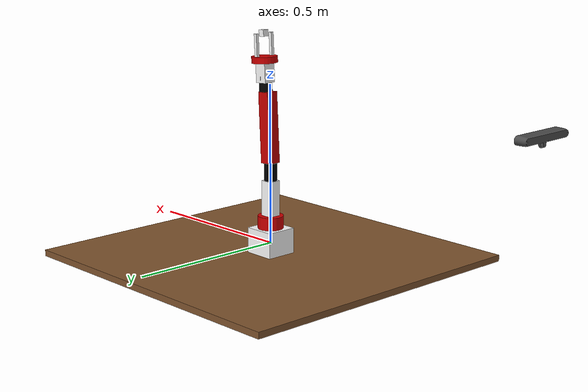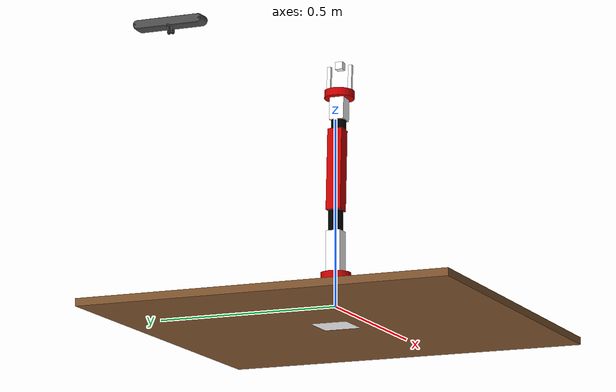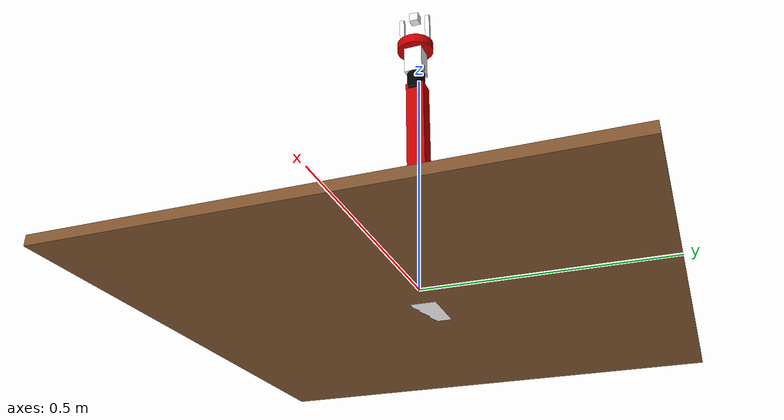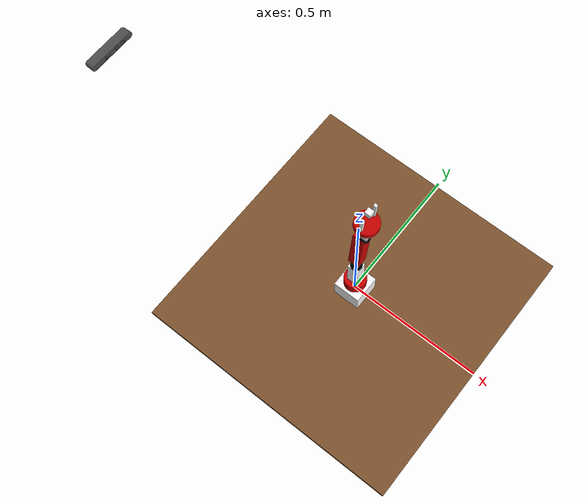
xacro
<?xml version="1.0"?>

<robot name="seven_dof_arm" xmlns:xacro="http://www.ros.org/wiki/xacro">

  <!-- Include materials -->

    <material name="Black">
        <color rgba="0.0 0.0 0.0 1.0"/>
    </material>

    <material name="Red">
        <color rgba="0.8 0.0 0.0 1.0"/>
    </material>

    <material name="White">
        <color rgba="1.0 1.0 1.0 1.0"/>
    </material>

  <property name="deg_to_rad" value="0.01745329251994329577"/>

  <!-- Constants -->
  <property name="M_SCALE" value="0.001 0.001 0.001"/>
  <property name="M_PI" value="3.14159"/>

  <!-- Shoulder pan link properties -->
  <property name="shoulder_pan_width" value="0.04" />
  <property name="shoulder_pan_len" value="0.08" />

  <!-- Shoulder pitch link properties -->
  <property name="shoulder_pitch_len" value="0.14" />
  <property name="shoulder_pitch_width" value="0.04" />
  <property name="shoulder_pitch_height" value="0.04" />

  <!-- Elbow roll link properties -->
  <property name="elbow_roll_width" value="0.02" />
  <property name="elbow_roll_len" value="0.06" />

  <!-- Elbow pitch link properties -->
  <property name="elbow_pitch_len" value="0.22" />
  <property name="elbow_pitch_width" value="0.04" />
  <property name="elbow_pitch_height" value="0.04" />

  <!-- Wrist roll link properties -->
  <property name="wrist_roll_width" value="0.02" />
  <property name="wrist_roll_len" value="0.04" />

  <!-- wrist pitch link properties -->
  <property name="wrist_pitch_len" value="0.06" />
  <property name="wrist_pitch_width" value="0.04" />
  <property name="wrist_pitch_height" value="0.04" />

  <!-- Gripper roll link properties -->
  <property name="gripper_roll_width" value="0.04" />
  <property name="gripper_roll_len" value="0.02" />

  <!-- Left gripper -->
  <property name="left_gripper_len" value="0.08" />
  <property name="left_gripper_width" value="0.01" />
  <property name="left_gripper_height" value="0.01" />

  <!-- Right gripper -->
  <property name="right_gripper_len" value="0.08" />
  <property name="right_gripper_width" value="0.01" />
  <property name="right_gripper_height" value="0.01" />

  <!-- Right gripper -->
  <property name="grasp_frame_len" value="0.02" />
  <property name="grasp_frame_width" value="0.02" />
  <property name="grasp_frame_height" value="0.02" />

   <xacro:macro name="inertial_matrix" params="mass">
      <inertial>
      	<mass value="${mass}" />
        <inertia ixx="1.0" ixy="0.0" ixz="0.0" iyy="0.5" iyz="0.0" izz="1.0" />
      </inertial>
   </xacro:macro>

   <xacro:macro name="transmission_block" params="joint_name">
	  <transmission name="tran1">
	    <type>transmission_interface/SimpleTransmission</type>
	    <joint name="${joint_name}">
	      <hardwareInterface>PositionJointInterface</hardwareInterface>
	    </joint>
	    <actuator name="motor1">
	      <hardwareInterface>PositionJointInterface</hardwareInterface>
	      <mechanicalReduction>1</mechanicalReduction>
	    </actuator>
	  </transmission>
   </xacro:macro>

<!-- BOTTOM FIXED LINK
This link is the base of the arm in which arm is placed

-->

  <joint name="bottom_joint" type="fixed">
    <origin xyz="0 0 0" rpy="0 0 0" />
    <parent link="base_link"/>
    <child link="bottom_link"/>
  </joint>

  <link name="bottom_link">
    <visual>
      <origin xyz=" 0 0 -0.04"  rpy="0 0 0"/>
      <geometry>

	       <box size="1 1 0.02" />

      </geometry>
      <material name="Brown" />
    </visual>

    <collision>
      <origin xyz=" 0 0 -0.04"  rpy="0 0 0"/>
      <geometry>
	       <box size="1 1 0.02" />
      </geometry>
      </collision>>
  </link>

  <gazebo reference="bottom_link">
    <material>Gazebo/White</material>
  </gazebo>

  <!-- BASE LINK -->
  <link name="base_link">
    <visual>
      <origin xyz="0 0 0" rpy="${M_PI/2} 0 0" /> <!-- rotate PI/2 -->
      <geometry>

	       <box size="0.1 0.1 0.1" />

      </geometry>
      <material name="White" />
    </visual>

    <collision>
      <origin xyz="0 0 0" rpy="${M_PI/2} 0 0" /> <!-- rotate PI/2 -->
      <geometry>

	       <box size="0.1 0.1 0.1" />

      </geometry>
      </collision>>
	<xacro:inertial_matrix mass="1"/>
  </link>

  <gazebo reference="base_link">
    <material>Gazebo/White</material>
  </gazebo>

  <joint name="shoulder_pan_joint" type="revolute">
    <parent link="base_link"/>
    <child link="shoulder_pan_link"/>
    <origin xyz="0 0 0.05" rpy="0 ${M_PI/2} ${M_PI*0}" />
    <axis xyz="-1 0 0" />
    <limit effort="300" velocity="1" lower="-2.61799387799" upper="1.98394848567"/>
    <dynamics damping="50" friction="1"/>
  </joint>

  <!-- SHOULDER PAN LINK -->
  <link name="shoulder_pan_link" >

    <visual>
      <origin xyz="0 0 0" rpy="0 ${M_PI/2} 0" />
      <geometry>

            <cylinder radius="${shoulder_pan_width}" length="${shoulder_pan_len}"/>

      </geometry>
      <material name="Red" />
    </visual>

    <collision>
      <origin xyz="0 0 0" rpy="0 ${M_PI/2} 0" />
      <geometry>
            <cylinder radius="${shoulder_pan_width}" length="${shoulder_pan_len}"/>
      </geometry>
    </collision>
	<xacro:inertial_matrix mass="1"/>
  </link>

  <gazebo reference="shoulder_pan_link">
    <material>Gazebo/Red</material>
  </gazebo>

  <joint name="shoulder_pitch_joint" type="revolute">
    <parent link="shoulder_pan_link"/>
    <child link="shoulder_pitch_link"/>
    <origin xyz="-0.041 0.0021 0.0" rpy="-${M_PI/2} 0 ${M_PI/2}" />
    <axis xyz="1 0 0" />
    <limit effort="300" velocity="1" lower="-1.19962513147" upper="1.89994105047" />
    <dynamics damping="50" friction="1"/>
  </joint>

  <!-- SHOULDER PITCH LINK -->
  <link name="shoulder_pitch_link" >
    <visual>
      <origin xyz="-0.002 0 0.04" rpy="0 ${M_PI/2} 0" />
      <geometry>

           <box size="${shoulder_pitch_len} ${shoulder_pitch_width} ${shoulder_pitch_height}" />

      </geometry>
      <material name="White" />
    </visual>

    <collision>
      <origin xyz="-0.002 0 0.04" rpy="0 ${M_PI/2} 0" />
      <geometry>
           <box size="${shoulder_pitch_len} ${shoulder_pitch_width} ${shoulder_pitch_height}" />
      </geometry>
    </collision>
	<xacro:inertial_matrix mass="1"/>
  </link>

  <gazebo reference="shoulder_pitch_link">
    <material>Gazebo/White</material>
  </gazebo>

  <joint name="elbow_roll_joint" type="revolute">
    <parent link="shoulder_pitch_link"/>
    <child link="elbow_roll_link"/>
    <origin xyz="-0.002 0 0.1206" rpy="${M_PI} ${M_PI/2} 0" />
    <axis xyz="-1 0 0" />
    <limit effort="300" velocity="1" lower="-2.61799387799" upper="0.705631162427" />
    <dynamics damping="50" friction="1"/>
  </joint>

  <!-- ELBOW ROLL LINK -->
  <link name="elbow_roll_link" >
    <visual>
      <origin xyz="-0.015 0.0 -0.0" rpy="0 ${M_PI/2} 0" />
      <geometry>

            <cylinder radius="${elbow_roll_width}" length="${elbow_roll_len}"/>

      </geometry>
      <material name="Black" />
    </visual>

    <collision>
      <origin xyz="-0.015 0.0 -0.0" rpy="0 ${M_PI/2} 0" />
      <geometry>
            <cylinder radius="${elbow_roll_width}" length="${elbow_roll_len}"/>
      </geometry>
    </collision>
	<xacro:inertial_matrix mass="1"/>
  </link>

  <gazebo reference="elbow_roll_link">
    <material>Gazebo/Black</material>
  </gazebo>

  <joint name="elbow_pitch_joint" type="revolute">
    <parent link="elbow_roll_link"/>
    <child link="elbow_pitch_link"/>
    <origin xyz="-0.035 0 0.0" rpy="0.055 ${M_PI/2} 0" />
    <axis xyz="1 0 0" />
    <limit effort="300" velocity="1" lower="-1.5953400194" upper="1.93281579274" />
    <dynamics damping="50" friction="1"/>
  </joint>

  <!-- ELBOW PITCH LINK -->
  <link name="elbow_pitch_link" >
    <visual>
      <origin xyz="0 0 -0.12" rpy="0 ${M_PI/2} 0" />
      <geometry>

       <box size="${elbow_pitch_len} ${elbow_pitch_width} ${elbow_pitch_height}" />

      </geometry>
      <material name="Red" />
    </visual>

    <collision>
      <origin xyz="0 0 -0.12" rpy="0 ${M_PI/2} 0" />
      <geometry>
       <box size="${elbow_pitch_len} ${elbow_pitch_width} ${elbow_pitch_height}" />
      </geometry>
    </collision>
	<xacro:inertial_matrix mass="1"/>
  </link>

  <gazebo reference="elbow_pitch_link">
    <material>Gazebo/Red</material>
  </gazebo>

  <joint name="wrist_roll_joint" type="revolute">
    <parent link="elbow_pitch_link"/>
    <child link="wrist_roll_link"/>
    <origin xyz="0.0 0.0081 -.248" rpy="0 ${M_PI/2} ${M_PI}" />
    <axis xyz="1 0 0" />
    <limit effort="300" velocity="1" lower="-2.61799387799" upper="2.6128806087" />
    <dynamics damping="50" friction="1"/>
  </joint>

  <!-- WRIST ROLL LINK -->
  <link name="wrist_roll_link" >
    <visual>
      <origin xyz="0 0 0" rpy="0 ${M_PI/2} 0" />
      <geometry>

           <cylinder radius="${elbow_roll_width}" length="${elbow_roll_len}"/>

      </geometry>
      <material name="Black" />
    </visual>

    <collision>
      <origin xyz="0 0 0" rpy="0 ${M_PI/2} 0" />
      <geometry>
           <cylinder radius="${elbow_roll_width}" length="${elbow_roll_len}"/>
      </geometry>
    </collision>
	<xacro:inertial_matrix mass="1"/>
  </link>

  <gazebo reference="wrist_roll_link">
    <material>Gazebo/Black</material>
  </gazebo>

  <joint name="wrist_pitch_joint" type="revolute">
    <parent link="wrist_roll_link"/>
    <child link="wrist_pitch_link"/>
    <origin xyz="0.0 0.0 0.0001" rpy="0 ${M_PI/2} 0" />
    <axis xyz="1 0 0" />
    <limit effort="300" velocity="1" lower="-1.5953400194" upper="1.98394848567" />
    <dynamics damping="50" friction="1"/>
  </joint>

  <!-- WRIST PITCH LINK -->
  <link name="wrist_pitch_link">
    <visual>
      <origin xyz="0 0 0.04" rpy="0 ${M_PI/2} 0" />
      <geometry>

           <box size="${wrist_pitch_len} ${wrist_pitch_width} ${wrist_pitch_height}" />

      </geometry>
      <material name="White" />
    </visual>

    <collision>
      <origin xyz="0 0 0.04 " rpy="0 ${M_PI/2} 0" />
      <geometry>
          <box size="${wrist_pitch_len} ${wrist_pitch_width} ${wrist_pitch_height}" />
      </geometry>
    </collision>
	<xacro:inertial_matrix mass="1"/>
  </link>

  <gazebo reference="wrist_pitch_link">
    <material>Gazebo/White</material>
  </gazebo>

  <joint name="gripper_roll_joint" type="revolute">
    <parent link="wrist_pitch_link"/>
    <child link="gripper_roll_link"/>
    <origin xyz="0 0 0.080" rpy="${1.5*M_PI} -${.5*M_PI} 0" />
    <axis xyz="1 0 0" />
    <limit effort="300" velocity="1" lower="-2.61799387799" upper="2.6128806087" />
    <dynamics damping="50" friction="1"/>
  </joint>

  <!-- GRIPPER ROLL LINK -->
  <link name="gripper_roll_link">
    <visual>
      <origin xyz="0 0 0" rpy="0 ${M_PI/2} 0" />
      <geometry>

            <cylinder radius="${gripper_roll_width}" length="${gripper_roll_len}"/>

      </geometry>
      <material name="Red" />
    </visual>

    <collision>
      <origin xyz="0 0 0" rpy="0 ${M_PI/2} 0" />
      <geometry>
            <cylinder radius="${gripper_roll_width}" length="${gripper_roll_len}"/>
      </geometry>
    </collision>
	<xacro:inertial_matrix mass="1"/>
  </link>

  <gazebo reference="gripper_roll_link">
    <material>Gazebo/Red</material>
  </gazebo>

  <joint name="finger_joint1" type="prismatic">
    <parent link="gripper_roll_link"/>
    <child link="gripper_finger_link1"/>
    <origin xyz="0.0 0 0" />
    <axis xyz="0 1 0" />
      <limit effort="100" lower="0" upper="0.03" velocity="1.0"/>

      <safety_controller k_position="20"
                         k_velocity="20"
                         soft_lower_limit="${-0.15 }"
                         soft_upper_limit="${ 0.0 }"/>

    <dynamics damping="50" friction="1"/>
  </joint>

  <!-- LEFT GRIPPER AFT LINK -->
  <link name="gripper_finger_link1">
     <visual>
      <origin xyz="0.04 -0.03 0"/>
      <geometry>

           <box size="${left_gripper_len} ${left_gripper_width} ${left_gripper_height}" />

      </geometry>
      <material name="White" />
    </visual>
	<xacro:inertial_matrix mass="1"/>
  </link>
  <gazebo reference="l_gripper_aft_link">
    <material>Gazebo/White</material>
  </gazebo>

<!-- Joint between Wrist roll and finger 2 -->

  <joint name="finger_joint2" type="prismatic">
    <parent link="gripper_roll_link"/>
    <child link="gripper_finger_link2"/>
    <origin xyz="0.0 0 0" />
    <axis xyz="0 1 0" />
    <limit effort="1" lower="-0.03" upper="0" velocity="1.0"/>

    <dynamics damping="50" friction="1"/>
  </joint>

  <!-- RIGHT GRIPPER AFT LINK -->

  <link name="gripper_finger_link2">
    <visual>
      <origin xyz="0.04 0.03 0"/>
      <geometry>

          <box size="${right_gripper_len} ${right_gripper_width} ${right_gripper_height}" />

      </geometry>
      <material name="White" />
    </visual>
	<xacro:inertial_matrix mass="1"/>
  </link>

  <gazebo reference="r_gripper_aft_link">
    <material>Gazebo/White</material>
  </gazebo>

    <!-- Grasping frame -->
    <link name="grasping_frame">
      <inertial>
        <origin xyz="0 0 0" rpy="0 0 0"/>
        <mass value="0.0001"/>
        <cuboid_inertia mass="0.0001" x="0.001" y="0.001" z="0.001"/>
        <inertia  ixx="1.0" ixy="0.0"  ixz="0.0"  iyy="100.0"  iyz="0.0"  izz="1.0" />

      </inertial>

    <visual>
      <origin xyz="0 0 0"/>
      <geometry>

          <box size="${grasp_frame_len} ${grasp_frame_width} ${grasp_frame_height}" />

      </geometry>
      <material name="White" />
    </visual>
    </link>

    <joint name="grasping_frame_joint" type="fixed">
      <parent link="gripper_roll_link"/>
      <child link="grasping_frame"/>
      <origin xyz="0.08 0 0" rpy="0 0 0"/>
    </joint>

  <xacro:include filename="/home/anis/catkin_ws/src/mastering_ros_robot_description_pkg/urdf/sensors/xtion_pro_live.urdf.xacro"/>

  <!-- Transmissions for ROS Control -->

   <xacro:transmission_block joint_name="shoulder_pan_joint"/>
   <xacro:transmission_block joint_name="shoulder_pitch_joint"/>
   <xacro:transmission_block joint_name="elbow_roll_joint"/>
   <xacro:transmission_block joint_name="elbow_pitch_joint"/>
   <xacro:transmission_block joint_name="wrist_roll_joint"/>
   <xacro:transmission_block joint_name="wrist_pitch_joint"/>
   <xacro:transmission_block joint_name="gripper_roll_joint"/>
   <xacro:transmission_block joint_name="finger_joint1"/>
   <xacro:transmission_block joint_name="finger_joint2"/>

  <!-- Define arm with gripper mounted on a base -->

  <!-- Define RGB-D sensor -->
  <xacro:xtion_pro_live name="rgbd_camera" parent="base">
    <origin xyz="-1 0 0.5" rpy="0 ${0.0 * deg_to_rad} 0"/>
    <origin xyz="0 0 0" rpy="${-90.0 * deg_to_rad} 0 ${-90.0 * deg_to_rad}"/>
  </xacro:xtion_pro_live>

  <!-- ros_control plugin -->
  <gazebo>
    <plugin name="gazebo_ros_control" filename="libgazebo_ros_control.so">
      <robotNamespace>/seven_dof_arm</robotNamespace>
    </plugin>
  </gazebo>

</robot>

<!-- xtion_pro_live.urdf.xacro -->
<robot xmlns:xacro="http://ros.org/wiki/xacro">

  <xacro:include filename="$(find mastering_ros_robot_description_pkg)/urdf/sensors/xtion_pro_live.gazebo.xacro"/>

  <xacro:macro name="dummy_inertial">
    <inertial>
      <origin xyz="0 0 0" rpy="0 0 0"/>
      <mass value="0.001"/>
      <inertia ixx="0.00001" ixy="0" ixz="0"
               iyy="0.00001" iyz="0"
               izz="0.00001"/>
    </inertial>
  </xacro:macro>

  <xacro:macro name="xtion_pro_live" params="name parent *origin *optical_origin">

    <!-- frames in the center of the camera -->
    <joint name="${name}_joint" type="fixed">
      <insert_block name="origin"/>
      <parent link="${parent}_link"/>
      <child link="${name}_link"/>
    </joint>

    <link name="${name}_link">
      <inertial>
        <origin xyz="-0.00936000000 -0.00003000000 -0.00273000000" rpy="0 0 0"/>
        <mass value="0.21970000000"/>
        <inertia ixx="0.00000429247" ixy="0.00000000000" ixz="0.00000002565"
                 iyy="0.00000008027" iyz="0.00000000000"
                 izz="0.00000427339"/>
      </inertial>
      <visual>
        <origin xyz="0 0 0" rpy="0 0 0"/>
        <geometry>
          <mesh filename="$(find mastering_ros_robot_description_pkg)/meshes/sensors/xtion_pro_live/xtion_pro_live.dae"/>
        </geometry>
        <material name="DarkGrey"/>
      </visual>
    </link>

    <joint name="${name}_optical_joint" type="fixed">
      <insert_block name="optical_origin"/>
      <parent link="${name}_link"/>
      <child link="${name}_optical_frame"/>
    </joint>

    <link name="${name}_optical_frame">
      <dummy_inertial/>
    </link>

    <!-- Depth sensor frames -->
    <joint name="${name}_depth_joint" type="fixed">
      <origin xyz="0.0 0.049 0.0" rpy="0 0 0"/>
      <parent link="${name}_link"/>
      <child link="${name}_depth_frame"/>
    </joint>

    <link name="${name}_depth_frame">
      <dummy_inertial/>
    </link>

    <joint name="${name}_depth_optical_joint" type="fixed">
      <origin xyz="0 0 0" rpy="${-90.0 * deg_to_rad} 0.0 ${-90.0 * deg_to_rad}"/>
      <parent link="${name}_depth_frame"/>
      <child link="${name}_depth_optical_frame"/>
    </joint>

    <link name="${name}_depth_optical_frame">
      <dummy_inertial/>
    </link>

    <!-- RGB sensor frames -->
    <joint name="${name}_rgb_joint" type="fixed">
      <origin xyz="0.0 0.022 0.0" rpy="0 0 0"/>
      <parent link="${name}_link"/>
      <child link="${name}_rgb_frame"/>
    </joint>

    <link name="${name}_rgb_frame">
      <dummy_inertial/>
    </link>

    <joint name="${name}_rgb_optical_joint" type="fixed">
      <origin xyz="0 0 0" rpy="${-90.0 * deg_to_rad} 0.0 ${-90.0 * deg_to_rad}"/>
      <parent link="${name}_rgb_frame"/>
      <child link="${name}_rgb_optical_frame"/>
    </joint>

    <link name="${name}_rgb_optical_frame">
      <dummy_inertial/>
    </link>

    <xacro:xtion_pro_live_rgbd_camera_gazebo name="${name}"/>
  </xacro:macro>

</robot>
